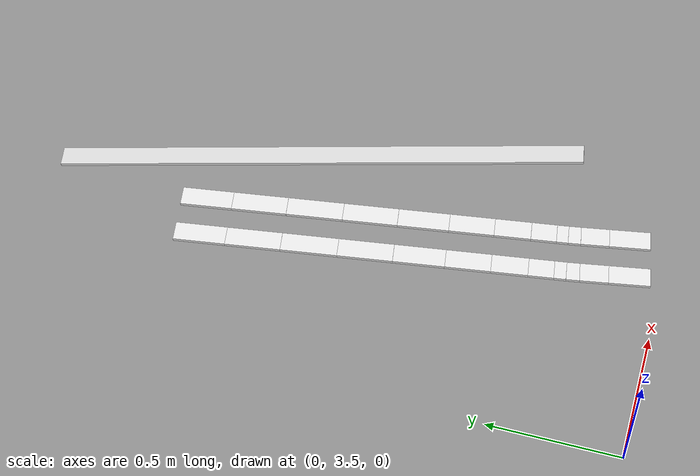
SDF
<sdf version="1.9">
 <world name="igvc_competition">
  <model name="Line_002_0200">
   <static>1</static>
   <pose>0.6589 5.2451 0.011 0 0 -1.422509</pose>
   <link name="link">
    <visual name="visual">
     <geometry><box><size>0.1970 0.0762 0.012</size></box></geometry>
     <material>
      <ambient>0.98 0.98 0.98 1</ambient>
      <diffuse>0.98 0.98 0.98 1</diffuse>
      <specular>0.05 0.05 0.05 1</specular>
      <emissive>0.9 0.9 0.9 1</emissive>
     </material>
    </visual>
   </link>
  </model>
  <model name="Line_002_0201">
   <static>1</static>
   <pose>0.4975 5.2208 0.011 0 0 -1.422509</pose>
   <link name="link">
    <visual name="visual">
     <geometry><box><size>0.1970 0.0762 0.012</size></box></geometry>
     <material>
      <ambient>0.98 0.98 0.98 1</ambient>
      <diffuse>0.98 0.98 0.98 1</diffuse>
      <specular>0.05 0.05 0.05 1</specular>
      <emissive>0.9 0.9 0.9 1</emissive>
     </material>
    </visual>
   </link>
  </model>
  <model name="Line_002_0202">
   <static>1</static>
   <pose>0.6891 5.0434 0.011 0 0 -1.422328</pose>
   <link name="link">
    <visual name="visual">
     <geometry><box><size>0.2109 0.0762 0.012</size></box></geometry>
     <material>
      <ambient>0.98 0.98 0.98 1</ambient>
      <diffuse>0.98 0.98 0.98 1</diffuse>
      <specular>0.05 0.05 0.05 1</specular>
      <emissive>0.9 0.9 0.9 1</emissive>
     </material>
    </visual>
   </link>
  </model>
  <model name="Line_002_0203">
   <static>1</static>
   <pose>0.5275 5.0191 0.011 0 0 -1.422797</pose>
   <link name="link">
    <visual name="visual">
     <geometry><box><size>0.2109 0.0762 0.012</size></box></geometry>
     <material>
      <ambient>0.98 0.98 0.98 1</ambient>
      <diffuse>0.98 0.98 0.98 1</diffuse>
      <specular>0.05 0.05 0.05 1</specular>
      <emissive>0.9 0.9 0.9 1</emissive>
     </material>
    </visual>
   </link>
  </model>
  <model name="Line_002_0204">
   <static>1</static>
   <pose>0.7206 4.8325 0.011 0 0 -1.423123</pose>
   <link name="link">
    <visual name="visual">
     <geometry><box><size>0.2154 0.0762 0.012</size></box></geometry>
     <material>
      <ambient>0.98 0.98 0.98 1</ambient>
      <diffuse>0.98 0.98 0.98 1</diffuse>
      <specular>0.05 0.05 0.05 1</specular>
      <emissive>0.9 0.9 0.9 1</emissive>
     </material>
    </visual>
   </link>
  </model>
  <model name="Line_002_0205">
   <static>1</static>
   <pose>0.5590 4.8083 0.011 0 0 -1.423054</pose>
   <link name="link">
    <visual name="visual">
     <geometry><box><size>0.2153 0.0762 0.012</size></box></geometry>
     <material>
      <ambient>0.98 0.98 0.98 1</ambient>
      <diffuse>0.98 0.98 0.98 1</diffuse>
      <specular>0.05 0.05 0.05 1</specular>
      <emissive>0.9 0.9 0.9 1</emissive>
     </material>
    </visual>
   </link>
  </model>
  <model name="Line_002_0206">
   <static>1</static>
   <pose>0.7519 4.6219 0.011 0 0 -1.422987</pose>
   <link name="link">
    <visual name="visual">
     <geometry><box><size>0.2105 0.0762 0.012</size></box></geometry>
     <material>
      <ambient>0.98 0.98 0.98 1</ambient>
      <diffuse>0.98 0.98 0.98 1</diffuse>
      <specular>0.05 0.05 0.05 1</specular>
      <emissive>0.9 0.9 0.9 1</emissive>
     </material>
    </visual>
   </link>
  </model>
  <model name="Line_002_0207">
   <static>1</static>
   <pose>0.5903 4.5977 0.011 0 0 -1.422987</pose>
   <link name="link">
    <visual name="visual">
     <geometry><box><size>0.2105 0.0762 0.012</size></box></geometry>
     <material>
      <ambient>0.98 0.98 0.98 1</ambient>
      <diffuse>0.98 0.98 0.98 1</diffuse>
      <specular>0.05 0.05 0.05 1</specular>
      <emissive>0.9 0.9 0.9 1</emissive>
     </material>
    </visual>
   </link>
  </model>
  <model name="Line_002_0208">
   <static>1</static>
   <pose>0.7818 4.4207 0.011 0 0 -1.423494</pose>
   <link name="link">
    <visual name="visual">
     <geometry><box><size>0.1962 0.0762 0.012</size></box></geometry>
     <material>
      <ambient>0.98 0.98 0.98 1</ambient>
      <diffuse>0.98 0.98 0.98 1</diffuse>
      <specular>0.05 0.05 0.05 1</specular>
      <emissive>0.9 0.9 0.9 1</emissive>
     </material>
    </visual>
   </link>
  </model>
  <model name="Line_002_0209">
   <static>1</static>
   <pose>0.6202 4.3966 0.011 0 0 -1.423419</pose>
   <link name="link">
    <visual name="visual">
     <geometry><box><size>0.1961 0.0762 0.012</size></box></geometry>
     <material>
      <ambient>0.98 0.98 0.98 1</ambient>
      <diffuse>0.98 0.98 0.98 1</diffuse>
      <specular>0.05 0.05 0.05 1</specular>
      <emissive>0.9 0.9 0.9 1</emissive>
     </material>
    </visual>
   </link>
  </model>
  <model name="Line_002_0210">
   <static>1</static>
   <pose>0.8089 4.2385 0.011 0 0 -1.423484</pose>
   <link name="link">
    <visual name="visual">
     <geometry><box><size>0.1724 0.0762 0.012</size></box></geometry>
     <material>
      <ambient>0.98 0.98 0.98 1</ambient>
      <diffuse>0.98 0.98 0.98 1</diffuse>
      <specular>0.05 0.05 0.05 1</specular>
      <emissive>0.9 0.9 0.9 1</emissive>
     </material>
    </visual>
   </link>
  </model>
  <model name="Line_002_0211">
   <static>1</static>
   <pose>0.6473 4.2143 0.011 0 0 -1.423484</pose>
   <link name="link">
    <visual name="visual">
     <geometry><box><size>0.1724 0.0762 0.012</size></box></geometry>
     <material>
      <ambient>0.98 0.98 0.98 1</ambient>
      <diffuse>0.98 0.98 0.98 1</diffuse>
      <specular>0.05 0.05 0.05 1</specular>
      <emissive>0.9 0.9 0.9 1</emissive>
     </material>
    </visual>
   </link>
  </model>
  <model name="Line_002_0212">
   <static>1</static>
   <pose>0.8317 4.0844 0.011 0 0 -1.423718</pose>
   <link name="link">
    <visual name="visual">
     <geometry><box><size>0.1392 0.0762 0.012</size></box></geometry>
     <material>
      <ambient>0.98 0.98 0.98 1</ambient>
      <diffuse>0.98 0.98 0.98 1</diffuse>
      <specular>0.05 0.05 0.05 1</specular>
      <emissive>0.9 0.9 0.9 1</emissive>
     </material>
    </visual>
   </link>
  </model>
  <model name="Line_002_0213">
   <static>1</static>
   <pose>0.6701 4.0602 0.011 0 0 -1.423718</pose>
   <link name="link">
    <visual name="visual">
     <geometry><box><size>0.1392 0.0762 0.012</size></box></geometry>
     <material>
      <ambient>0.98 0.98 0.98 1</ambient>
      <diffuse>0.98 0.98 0.98 1</diffuse>
      <specular>0.05 0.05 0.05 1</specular>
      <emissive>0.9 0.9 0.9 1</emissive>
     </material>
    </visual>
   </link>
  </model>
  <model name="Line_002_0214">
   <static>1</static>
   <pose>0.8489 3.9677 0.011 0 0 -1.424362</pose>
   <link name="link">
    <visual name="visual">
     <geometry><box><size>0.0966 0.0762 0.012</size></box></geometry>
     <material>
      <ambient>0.98 0.98 0.98 1</ambient>
      <diffuse>0.98 0.98 0.98 1</diffuse>
      <specular>0.05 0.05 0.05 1</specular>
      <emissive>0.9 0.9 0.9 1</emissive>
     </material>
    </visual>
   </link>
  </model>
  <model name="Line_002_0215">
   <static>1</static>
   <pose>0.6874 3.9436 0.011 0 0 -1.423187</pose>
   <link name="link">
    <visual name="visual">
     <geometry><box><size>0.0965 0.0762 0.012</size></box></geometry>
     <material>
      <ambient>0.98 0.98 0.98 1</ambient>
      <diffuse>0.98 0.98 0.98 1</diffuse>
      <specular>0.05 0.05 0.05 1</specular>
      <emissive>0.9 0.9 0.9 1</emissive>
     </material>
    </visual>
   </link>
  </model>
  <model name="Line_002_0216">
   <static>1</static>
   <pose>0.8592 3.8982 0.011 0 0 -1.424053</pose>
   <link name="link">
    <visual name="visual">
     <geometry><box><size>0.0438 0.0762 0.012</size></box></geometry>
     <material>
      <ambient>0.98 0.98 0.98 1</ambient>
      <diffuse>0.98 0.98 0.98 1</diffuse>
      <specular>0.05 0.05 0.05 1</specular>
      <emissive>0.9 0.9 0.9 1</emissive>
     </material>
    </visual>
   </link>
  </model>
  <model name="Line_002_0217">
   <static>1</static>
   <pose>0.6978 3.8735 0.011 0 0 -1.424848</pose>
   <link name="link">
    <visual name="visual">
     <geometry><box><size>0.0454 0.0762 0.012</size></box></geometry>
     <material>
      <ambient>0.98 0.98 0.98 1</ambient>
      <diffuse>0.98 0.98 0.98 1</diffuse>
      <specular>0.05 0.05 0.05 1</specular>
      <emissive>0.9 0.9 0.9 1</emissive>
     </material>
    </visual>
   </link>
  </model>
  <model name="Line_002_0218">
   <static>1</static>
   <pose>0.8663 3.8533 0.011 0 0 -1.402865</pose>
   <link name="link">
    <visual name="visual">
     <geometry><box><size>0.0473 0.0762 0.012</size></box></geometry>
     <material>
      <ambient>0.98 0.98 0.98 1</ambient>
      <diffuse>0.98 0.98 0.98 1</diffuse>
      <specular>0.05 0.05 0.05 1</specular>
      <emissive>0.9 0.9 0.9 1</emissive>
     </material>
    </visual>
   </link>
  </model>
  <model name="Line_002_0219">
   <static>1</static>
   <pose>0.7052 3.8266 0.011 0 0 -1.404319</pose>
   <link name="link">
    <visual name="visual">
     <geometry><box><size>0.0495 0.0762 0.012</size></box></geometry>
     <material>
      <ambient>0.98 0.98 0.98 1</ambient>
      <diffuse>0.98 0.98 0.98 1</diffuse>
      <specular>0.05 0.05 0.05 1</specular>
      <emissive>0.9 0.9 0.9 1</emissive>
     </material>
    </visual>
   </link>
  </model>
  <model name="Line_002_0220">
   <static>1</static>
   <pose>0.8796 3.7771 0.011 0 0 -1.396610</pose>
   <link name="link">
    <visual name="visual">
     <geometry><box><size>0.1073 0.0762 0.012</size></box></geometry>
     <material>
      <ambient>0.98 0.98 0.98 1</ambient>
      <diffuse>0.98 0.98 0.98 1</diffuse>
      <specular>0.05 0.05 0.05 1</specular>
      <emissive>0.9 0.9 0.9 1</emissive>
     </material>
    </visual>
   </link>
  </model>
  <model name="Line_002_0221">
   <static>1</static>
   <pose>0.7187 3.7490 0.011 0 0 -1.395748</pose>
   <link name="link">
    <visual name="visual">
     <geometry><box><size>0.1079 0.0762 0.012</size></box></geometry>
     <material>
      <ambient>0.98 0.98 0.98 1</ambient>
      <diffuse>0.98 0.98 0.98 1</diffuse>
      <specular>0.05 0.05 0.05 1</specular>
      <emissive>0.9 0.9 0.9 1</emissive>
     </material>
    </visual>
   </link>
  </model>
  <model name="Line_002_0222">
   <static>1</static>
   <pose>0.9025 3.6479 0.011 0 0 -1.394744</pose>
   <link name="link">
    <visual name="visual">
     <geometry><box><size>0.1553 0.0762 0.012</size></box></geometry>
     <material>
      <ambient>0.98 0.98 0.98 1</ambient>
      <diffuse>0.98 0.98 0.98 1</diffuse>
      <specular>0.05 0.05 0.05 1</specular>
      <emissive>0.9 0.9 0.9 1</emissive>
     </material>
    </visual>
   </link>
  </model>
  <model name="Line_002_0223">
   <static>1</static>
   <pose>0.7417 3.6193 0.011 0 0 -1.394969</pose>
   <link name="link">
    <visual name="visual">
     <geometry><box><size>0.1555 0.0762 0.012</size></box></geometry>
     <material>
      <ambient>0.98 0.98 0.98 1</ambient>
      <diffuse>0.98 0.98 0.98 1</diffuse>
      <specular>0.05 0.05 0.05 1</specular>
      <emissive>0.9 0.9 0.9 1</emissive>
     </material>
    </visual>
   </link>
  </model>
  <model name="Ramp_down_right_white_line">
   <static>1</static>
   <pose>0.8339 4.8572 0.2005 0.000000 0.148923 1.735700</pose>
   <link name="link">
    <visual name="visual">
     <geometry><box><size>2.0017 0.0762 0.012</size></box></geometry>
     <material>
      <ambient>0.98 0.98 0.98 1</ambient>
      <diffuse>0.98 0.98 0.98 1</diffuse>
      <specular>0.05 0.05 0.05 1</specular>
      <emissive>0.9 0.9 0.9 1</emissive>
     </material>
    </visual>
   </link>
  </model>
 </world>
</sdf>
